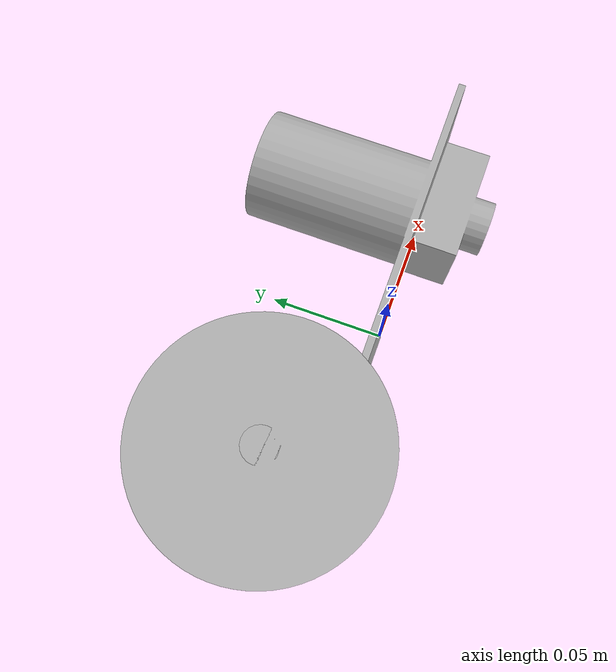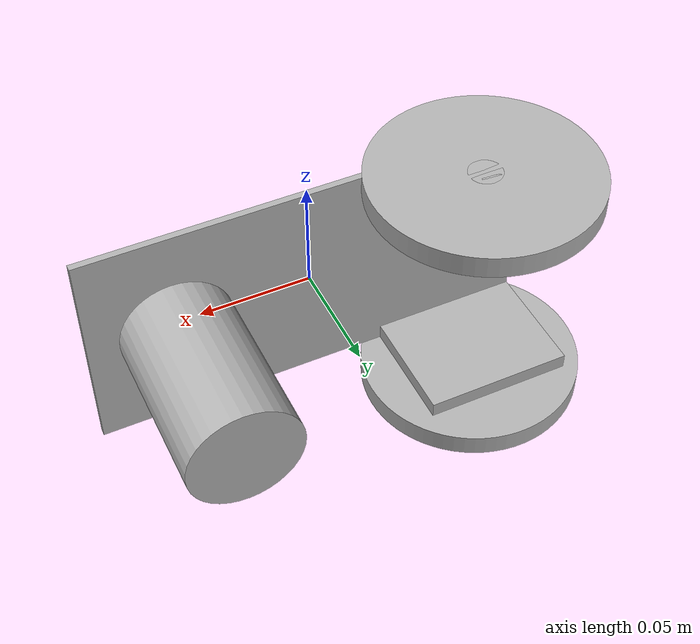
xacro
<?xml version="1.0" ?>
<robot name="ASSESSMENT" xmlns:xacro="http://www.ros.org/wiki/xacro">

<xacro:include filename="$(find ASSESSMENT_description)/urdf/materials.xacro" />
<xacro:include filename="$(find ASSESSMENT_description)/urdf/ASSESSMENT.trans" />
<xacro:include filename="$(find ASSESSMENT_description)/urdf/ASSESSMENT.gazebo" />
<link name="base_link">
  <inertial>
    <origin xyz="0.02805125579812227 0.02702682334217834 0.0043038264852525605" rpy="0 0 0"/>
    <mass value="2.3724092855579104"/>
    <inertia ixx="0.003131" iyy="0.009101" izz="0.00928" ixy="-0.000285" iyz="0.0" ixz="-5e-06"/>
  </inertial>
  <visual>
    <origin xyz="0 0 0" rpy="0 0 0"/>
    <geometry>
      <mesh filename="package://ASSESSMENT_description/meshes/base_link.stl" scale="0.001 0.001 0.001"/>
    </geometry>
    <material name="silver"/>
  </visual>
  <collision>
    <origin xyz="0 0 0" rpy="0 0 0"/>
    <geometry>
      <mesh filename="package://ASSESSMENT_description/meshes/base_link.stl" scale="0.001 0.001 0.001"/>
    </geometry>
  </collision>
</link>

<link name="left_wheel_1">
  <inertial>
    <origin xyz="9.095998329544663e-09 4.4840873008808457e-07 -0.005000299389139373" rpy="0 0 0"/>
    <mass value="0.6165375582669969"/>
    <inertia ixx="0.00039" iyy="0.00039" izz="0.000771" ixy="0.0" iyz="0.0" ixz="-0.0"/>
  </inertial>
  <visual>
    <origin xyz="0.068339 -0.029922 0.05066" rpy="0 0 0"/>
    <geometry>
      <mesh filename="package://ASSESSMENT_description/meshes/left_wheel_1.stl" scale="0.001 0.001 0.001"/>
    </geometry>
    <material name="silver"/>
  </visual>
  <collision>
    <origin xyz="0.068339 -0.029922 0.05066" rpy="0 0 0"/>
    <geometry>
      <mesh filename="package://ASSESSMENT_description/meshes/left_wheel_1.stl" scale="0.001 0.001 0.001"/>
    </geometry>
  </collision>
</link>

<link name="right_wheel_1">
  <inertial>
    <origin xyz="-1.0726383301018494e-07 1.1895842625189723e-07 -0.005000299389139366" rpy="0 0 0"/>
    <mass value="0.6165375582669969"/>
    <inertia ixx="0.00039" iyy="0.00039" izz="0.000771" ixy="0.0" iyz="0.0" ixz="-0.0"/>
  </inertial>
  <visual>
    <origin xyz="0.067804 -0.030246 -0.05934" rpy="0 0 0"/>
    <geometry>
      <mesh filename="package://ASSESSMENT_description/meshes/right_wheel_1.stl" scale="0.001 0.001 0.001"/>
    </geometry>
    <material name="silver"/>
  </visual>
  <collision>
    <origin xyz="0.067804 -0.030246 -0.05934" rpy="0 0 0"/>
    <geometry>
      <mesh filename="package://ASSESSMENT_description/meshes/right_wheel_1.stl" scale="0.001 0.001 0.001"/>
    </geometry>
  </collision>
</link>

<joint name="Rev1" type="continuous">
  <origin xyz="-0.068339 0.029922 -0.05066" rpy="0 0 0"/>
  <parent link="base_link"/>
  <child link="left_wheel_1"/>
  <axis xyz="0.0 0.0 -1.0"/>
</joint>

<joint name="Rev2" type="continuous">
  <origin xyz="-0.067804 0.030246 0.05934" rpy="0 0 0"/>
  <parent link="base_link"/>
  <child link="right_wheel_1"/>
  <axis xyz="0.0 0.0 1.0"/>
</joint>

</robot>

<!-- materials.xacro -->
<robot name="ASSESSMENT" xmlns:xacro="http://www.ros.org/wiki/xacro" >

<material name="silver">
  <color rgba="0.700 0.700 0.700 1.000"/>
</material>

</robot>
